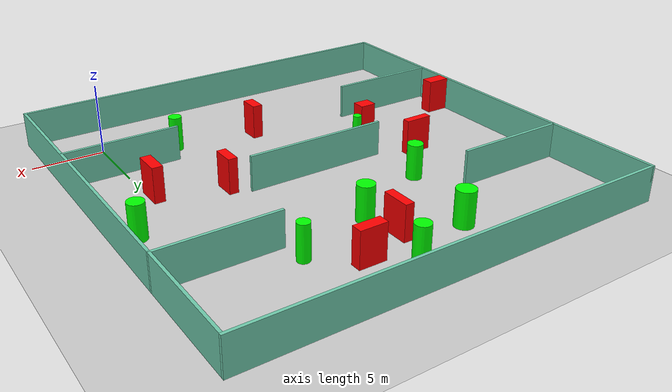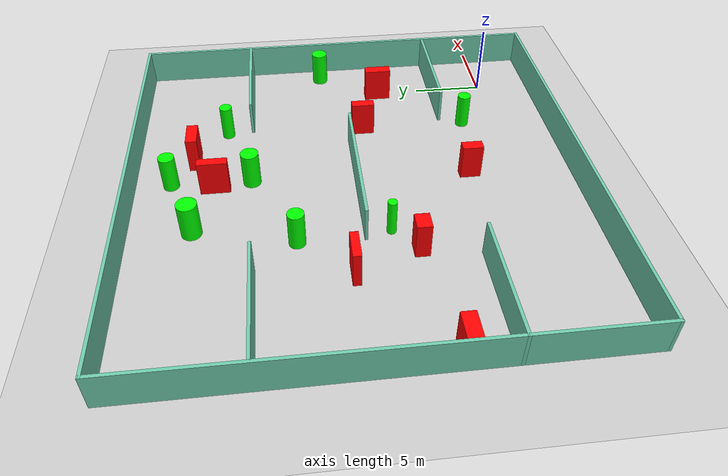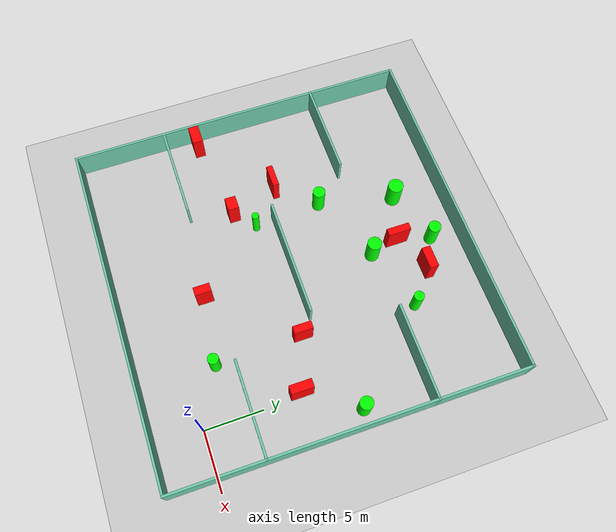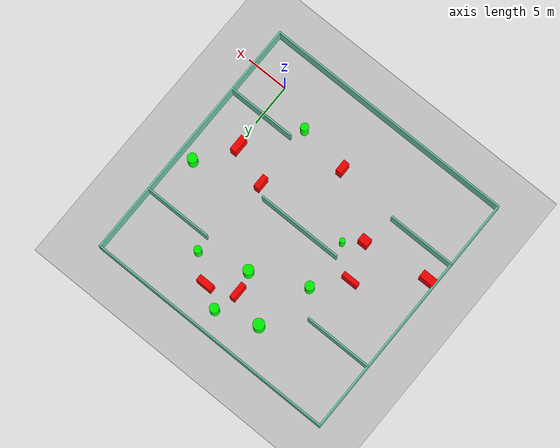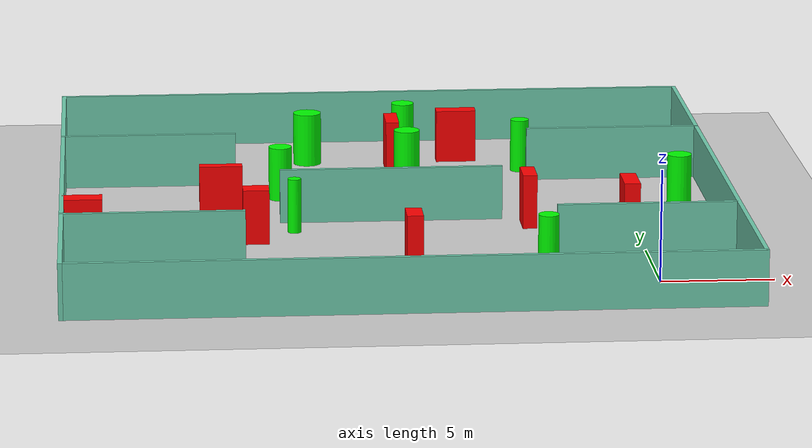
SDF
<sdf version="1.7">
 <world name="default">
  <light name="sun" type="directional">
   <pose>0 0 10 0 -0 0</pose>
   <diffuse>0.8 0.8 0.8 1</diffuse>
   <specular>0.2 0.2 0.2 1</specular>
   <attenuation>
    <range>1000</range>
    <constant>0.9</constant>
    <linear>0.01</linear>
    <quadratic>0.001</quadratic>
   </attenuation>
   <direction>-0.5 0.1 -0.9</direction>
   <spot><inner_angle>0</inner_angle><outer_angle>0</outer_angle><falloff>0</falloff></spot>
  </light>
  <model name="ground_plane">
   <static>1</static>
   <link name="link">
    <collision name="collision">
     <geometry><plane><normal>0 0 1</normal><size>100 100</size></plane></geometry>
     <surface>
      <contact><collide_bitmask>65535</collide_bitmask></contact>
      <friction><ode><mu>100</mu><mu2>50</mu2></ode></friction>
     </surface>
    </collision>
    <visual name="visual">
     <cast_shadows>0</cast_shadows>
     <geometry><plane><normal>0 0 1</normal><size>100 100</size></plane></geometry>
     <material>
      <script><uri>file://media/materials/scripts/gazebo.material</uri><name>Gazebo/Grey</name></script>
     </material>
    </visual>
   </link>
  </model>
  <gravity>0 0 -9.8</gravity>
  <magnetic_field>6e-06 2.3e-05 -4.2e-05</magnetic_field>
  <atmosphere type="adiabatic"/>
  <physics type="ode">
   <max_step_size>0.001</max_step_size>
   <real_time_factor>1</real_time_factor>
   <real_time_update_rate>1000</real_time_update_rate>
  </physics>
  <scene><ambient>0.4 0.4 0.4 1</ambient><background>0.7 0.7 0.7 1</background><shadows>1</shadows></scene>
  <spherical_coordinates>
   <surface_model>EARTH_WGS84</surface_model>
   <latitude_deg>0</latitude_deg>
   <longitude_deg>0</longitude_deg>
   <elevation>0</elevation>
   <heading_deg>0</heading_deg>
  </spherical_coordinates>
  <model name="my_base_walls">
   <link name="Wall_10">
    <collision name="Wall_10_Collision">
     <geometry><box><size>8.2 0.2 2.5</size></box></geometry>
     <pose>0 0 1.25 0 -0 0</pose>
    </collision>
    <visual name="Wall_10_Visual">
     <pose>0 0 1.25 0 -0 0</pose>
     <geometry><box><size>8.2 0.2 2.5</size></box></geometry>
     <material>
      <script><uri>file://media/materials/scripts/gazebo.material</uri><name>Gazebo/Grey</name></script>
      <ambient>0.435294 0.796078 0.67451 1</ambient>
     </material>
     <meta><layer>0</layer></meta>
    </visual>
    <pose>-11 -7 0 0 -0 0</pose>
   </link>
   <link name="Wall_12">
    <collision name="Wall_12_Collision">
     <geometry><box><size>8.2 0.2 2.5</size></box></geometry>
     <pose>0 0 1.25 0 -0 0</pose>
    </collision>
    <visual name="Wall_12_Visual">
     <pose>0 0 1.25 0 -0 0</pose>
     <geometry><box><size>8.2 0.2 2.5</size></box></geometry>
     <material>
      <script><uri>file://media/materials/scripts/gazebo.material</uri><name>Gazebo/Grey</name></script>
      <ambient>0.435294 0.796078 0.67451 1</ambient>
     </material>
     <meta><layer>0</layer></meta>
    </visual>
    <pose>-11 7 0 0 -0 0</pose>
   </link>
   <link name="Wall_14">
    <collision name="Wall_14_Collision">
     <geometry><box><size>8.2 0.2 2.5</size></box></geometry>
     <pose>0 0 1.25 0 -0 0</pose>
    </collision>
    <visual name="Wall_14_Visual">
     <pose>0 0 1.25 0 -0 0</pose>
     <geometry><box><size>8.2 0.2 2.5</size></box></geometry>
     <material>
      <script><uri>file://media/materials/scripts/gazebo.material</uri><name>Gazebo/Grey</name></script>
      <ambient>0.435294 0.796078 0.67451 1</ambient>
     </material>
     <meta><layer>0</layer></meta>
    </visual>
    <pose>11 7 0 0 -0 3.14159</pose>
   </link>
   <link name="Wall_16">
    <collision name="Wall_16_Collision">
     <geometry><box><size>10.2 0.2 2.5</size></box></geometry>
     <pose>0 0 1.25 0 -0 0</pose>
    </collision>
    <visual name="Wall_16_Visual">
     <pose>0 0 1.25 0 -0 0</pose>
     <geometry><box><size>10.2 0.2 2.5</size></box></geometry>
     <material>
      <script><uri>file://media/materials/scripts/gazebo.material</uri><name>Gazebo/Grey</name></script>
      <ambient>0.435294 0.796078 0.67451 1</ambient>
     </material>
     <meta><layer>0</layer></meta>
    </visual>
    <pose>0 0 0 0 -0 3.14159</pose>
   </link>
   <link name="Wall_2">
    <collision name="Wall_2_Collision">
     <geometry><box><size>30.2 0.2 2.5</size></box></geometry>
     <pose>0 0 1.25 0 -0 0</pose>
    </collision>
    <visual name="Wall_2_Visual">
     <pose>0 0 1.25 0 -0 0</pose>
     <geometry><box><size>30.2 0.2 2.5</size></box></geometry>
     <material>
      <script><uri>file://media/materials/scripts/gazebo.material</uri><name>Gazebo/Grey</name></script>
      <ambient>0.435294 0.796078 0.67451 1</ambient>
     </material>
     <meta><layer>0</layer></meta>
    </visual>
    <pose>0 -15 0 0 -0 3.14159</pose>
   </link>
   <link name="Wall_3">
    <collision name="Wall_3_Collision">
     <geometry><box><size>30.2 0.2 2.5</size></box></geometry>
     <pose>0 0 1.25 0 -0 0</pose>
    </collision>
    <visual name="Wall_3_Visual">
     <pose>0 0 1.25 0 -0 0</pose>
     <geometry><box><size>30.2 0.2 2.5</size></box></geometry>
     <material>
      <script><uri>file://media/materials/scripts/gazebo.material</uri><name>Gazebo/Grey</name></script>
      <ambient>0.435294 0.796078 0.67451 1</ambient>
     </material>
     <meta><layer>0</layer></meta>
    </visual>
    <pose>-15 0 0 0 -0 1.5708</pose>
   </link>
   <link name="Wall_4">
    <collision name="Wall_4_Collision">
     <geometry><box><size>30.2 0.2 2.5</size></box></geometry>
     <pose>0 0 1.25 0 -0 0</pose>
    </collision>
    <visual name="Wall_4_Visual">
     <pose>0 0 1.25 0 -0 0</pose>
     <geometry><box><size>30.2 0.2 2.5</size></box></geometry>
     <material>
      <script><uri>file://media/materials/scripts/gazebo.material</uri><name>Gazebo/Grey</name></script>
      <ambient>0.435294 0.796078 0.67451 1</ambient>
     </material>
     <meta><layer>0</layer></meta>
    </visual>
    <pose>0 15 0 0 -0 0</pose>
   </link>
   <link name="Wall_6">
    <collision name="Wall_6_Collision">
     <geometry><box><size>30.2 0.2 2.5</size></box></geometry>
     <pose>0 0 1.25 0 -0 0</pose>
    </collision>
    <visual name="Wall_6_Visual">
     <pose>0 0 1.25 0 -0 0</pose>
     <geometry><box><size>30.2 0.2 2.5</size></box></geometry>
     <material>
      <script><uri>file://media/materials/scripts/gazebo.material</uri><name>Gazebo/Grey</name></script>
      <ambient>0.435294 0.796078 0.67451 1</ambient>
     </material>
     <meta><layer>0</layer></meta>
    </visual>
    <pose>15 0 0 0 -0 1.5708</pose>
   </link>
   <link name="Wall_8">
    <collision name="Wall_8_Collision">
     <geometry><box><size>8.2 0.2 2.5</size></box></geometry>
     <pose>0 0 1.25 0 -0 0</pose>
    </collision>
    <visual name="Wall_8_Visual">
     <pose>0 0 1.25 0 -0 0</pose>
     <geometry><box><size>8.2 0.2 2.5</size></box></geometry>
     <material>
      <script><uri>file://media/materials/scripts/gazebo.material</uri><name>Gazebo/Grey</name></script>
      <ambient>0.435294 0.796078 0.67451 1</ambient>
     </material>
     <meta><layer>0</layer></meta>
    </visual>
    <pose>11 -7 0 0 -0 3.14159</pose>
   </link>
   <static>1</static>
   <pose>-11 11 0 0 -0 0</pose>
  </model>
  <model name="cylinder1">
   <static>1</static>
   <link name="link">
    <inertial>
     <mass>1</mass>
     <inertia><ixx>0.5</ixx><ixy>0</ixy><ixz>0</ixz><iyy>0.5</iyy><iyz>0</iyz><izz>1</izz></inertia>
    </inertial>
    <collision name="collision">
     <geometry><cylinder><radius>0.5362620007912603</radius><length>2.5</length></cylinder></geometry>
    </collision>
    <visual name="visual">
     <geometry><cylinder><radius>0.5362620007912603</radius><length>2.5</length></cylinder></geometry>
     <material>
      <ambient>0 1 0 1</ambient>
      <diffuse>0 1 0 1</diffuse>
      <specular>0.1 0.1 0.1 1</specular>
      <emissive>0 0 0 0</emissive>
     </material>
    </visual>
   </link>
   <pose>-9.60209510580282 23.487721410748595 1.25 0 0 0</pose>
  </model>
  <model name="cylinder2">
   <static>1</static>
   <link name="link">
    <inertial>
     <mass>1</mass>
     <inertia><ixx>0.5</ixx><ixy>0</ixy><ixz>0</ixz><iyy>0.5</iyy><iyz>0</iyz><izz>1</izz></inertia>
    </inertial>
    <collision name="collision">
     <geometry><cylinder><radius>0.6042024968127713</radius><length>2.5</length></cylinder></geometry>
    </collision>
    <visual name="visual">
     <geometry><cylinder><radius>0.6042024968127713</radius><length>2.5</length></cylinder></geometry>
     <material>
      <ambient>0 1 0 1</ambient>
      <diffuse>0 1 0 1</diffuse>
      <specular>0.1 0.1 0.1 1</specular>
      <emissive>0 0 0 0</emissive>
     </material>
    </visual>
   </link>
   <pose>-9.77927187030378 18.057673641165533 1.25 0 0 0</pose>
  </model>
  <model name="cylinder3">
   <static>1</static>
   <link name="link">
    <inertial>
     <mass>1</mass>
     <inertia><ixx>0.5</ixx><ixy>0</ixy><ixz>0</ixz><iyy>0.5</iyy><iyz>0</iyz><izz>1</izz></inertia>
    </inertial>
    <collision name="collision">
     <geometry><cylinder><radius>0.433818177557921</radius><length>2.5</length></cylinder></geometry>
    </collision>
    <visual name="visual">
     <geometry><cylinder><radius>0.433818177557921</radius><length>2.5</length></cylinder></geometry>
     <material>
      <ambient>0 1 0 1</ambient>
      <diffuse>0 1 0 1</diffuse>
      <specular>0.1 0.1 0.1 1</specular>
      <emissive>0 0 0 0</emissive>
     </material>
    </visual>
   </link>
   <pose>-4.248152499141366 19.77786326263529 1.25 0 0 0</pose>
  </model>
  <model name="cylinder4">
   <static>1</static>
   <link name="link">
    <inertial>
     <mass>1</mass>
     <inertia><ixx>0.5</ixx><ixy>0</ixy><ixz>0</ixz><iyy>0.5</iyy><iyz>0</iyz><izz>1</izz></inertia>
    </inertial>
    <collision name="collision">
     <geometry><cylinder><radius>0.30596868419865625</radius><length>2.5</length></cylinder></geometry>
    </collision>
    <visual name="visual">
     <geometry><cylinder><radius>0.30596868419865625</radius><length>2.5</length></cylinder></geometry>
     <material>
      <ambient>0 1 0 1</ambient>
      <diffuse>0 1 0 1</diffuse>
      <specular>0.1 0.1 0.1 1</specular>
      <emissive>0 0 0 0</emissive>
     </material>
    </visual>
   </link>
   <pose>-15.508229321980785 9.338243217760938 1.25 0 0 0</pose>
  </model>
  <model name="cylinder5">
   <static>1</static>
   <link name="link">
    <inertial>
     <mass>1</mass>
     <inertia><ixx>0.5</ixx><ixy>0</ixy><ixz>0</ixz><iyy>0.5</iyy><iyz>0</iyz><izz>1</izz></inertia>
    </inertial>
    <collision name="collision">
     <geometry><cylinder><radius>0.6606025399592867</radius><length>2.5</length></cylinder></geometry>
    </collision>
    <visual name="visual">
     <geometry><cylinder><radius>0.6606025399592867</radius><length>2.5</length></cylinder></geometry>
     <material>
      <ambient>0 1 0 1</ambient>
      <diffuse>0 1 0 1</diffuse>
      <specular>0.1 0.1 0.1 1</specular>
      <emissive>0 0 0 0</emissive>
     </material>
    </visual>
   </link>
   <pose>-14.323137322463722 21.831858688143587 1.25 0 0 0</pose>
  </model>
  <model name="cylinder6">
   <static>1</static>
   <link name="link">
    <inertial>
     <mass>1</mass>
     <inertia><ixx>0.5</ixx><ixy>0</ixy><ixz>0</ixz><iyy>0.5</iyy><iyz>0</iyz><izz>1</izz></inertia>
    </inertial>
    <collision name="collision">
     <geometry><cylinder><radius>0.5653871657430642</radius><length>2.5</length></cylinder></geometry>
    </collision>
    <visual name="visual">
     <geometry><cylinder><radius>0.5653871657430642</radius><length>2.5</length></cylinder></geometry>
     <material>
      <ambient>0 1 0 1</ambient>
      <diffuse>0 1 0 1</diffuse>
      <specular>0.1 0.1 0.1 1</specular>
      <emissive>0 0 0 0</emissive>
     </material>
    </visual>
   </link>
   <pose>2.4888174237712093 12.554332386689799 1.25 0 0 0</pose>
  </model>
  <model name="cylinder7">
   <static>1</static>
   <link name="link">
    <inertial>
     <mass>1</mass>
     <inertia><ixx>0.5</ixx><ixy>0</ixy><ixz>0</ixz><iyy>0.5</iyy><iyz>0</iyz><izz>1</izz></inertia>
    </inertial>
    <collision name="collision">
     <geometry><cylinder><radius>0.4611971692171186</radius><length>2.5</length></cylinder></geometry>
    </collision>
    <visual name="visual">
     <geometry><cylinder><radius>0.4611971692171186</radius><length>2.5</length></cylinder></geometry>
     <material>
      <ambient>0 1 0 1</ambient>
      <diffuse>0 1 0 1</diffuse>
      <specular>0.1 0.1 0.1 1</specular>
      <emissive>0 0 0 0</emissive>
     </material>
    </visual>
   </link>
   <pose>-4.65333495216621 2.3737788551580703 1.25 0 0 0</pose>
  </model>
  <model name="cylinder8">
   <static>1</static>
   <link name="link">
    <inertial>
     <mass>1</mass>
     <inertia><ixx>0.5</ixx><ixy>0</ixy><ixz>0</ixz><iyy>0.5</iyy><iyz>0</iyz><izz>1</izz></inertia>
    </inertial>
    <collision name="collision">
     <geometry><cylinder><radius>0.5369871977086539</radius><length>2.5</length></cylinder></geometry>
    </collision>
    <visual name="visual">
     <geometry><cylinder><radius>0.5369871977086539</radius><length>2.5</length></cylinder></geometry>
     <material>
      <ambient>0 1 0 1</ambient>
      <diffuse>0 1 0 1</diffuse>
      <specular>0.1 0.1 0.1 1</specular>
      <emissive>0 0 0 0</emissive>
     </material>
    </visual>
   </link>
   <pose>-15.897414058238336 15.277636979690978 1.25 0 0 0</pose>
  </model>
  <model name="box1">
   <static>1</static>
   <link name="link">
    <inertial>
     <mass>1</mass>
     <inertia><ixx>0.083</ixx><ixy>0</ixy><ixz>0</ixz><iyy>0.083</iyy><iyz>0</iyz><izz>0.083</izz></inertia>
    </inertial>
    <collision name="collision">
     <geometry><box><size>1.1777118152475108 0.9555386410075731 2.5</size></box></geometry>
    </collision>
    <visual name="visual">
     <geometry><box><size>1.1777118152475108 0.9555386410075731 2.5</size></box></geometry>
     <material>
      <ambient>1 0 0 1</ambient>
      <diffuse>1 0 0 1</diffuse>
      <specular>0.1 0.1 0.1 1</specular>
      <emissive>0 0 0 0</emissive>
     </material>
    </visual>
    <sensor name="my_contact" type="contact">
     <contact><collision>box_collision</collision><topic>__default_topic__</topic></contact>
    </sensor>
   </link>
   <pose>-17.30944522072137 7.773088846810822 1.25 0 0 0</pose>
  </model>
  <model name="box2">
   <static>1</static>
   <link name="link">
    <inertial>
     <mass>1</mass>
     <inertia><ixx>0.083</ixx><ixy>0</ixy><ixz>0</ixz><iyy>0.083</iyy><iyz>0</iyz><izz>0.083</izz></inertia>
    </inertial>
    <collision name="collision">
     <geometry><box><size>0.6236480552163869 1.9788091386885356 2.5</size></box></geometry>
    </collision>
    <visual name="visual">
     <geometry><box><size>0.6236480552163869 1.9788091386885356 2.5</size></box></geometry>
     <material>
      <ambient>1 0 0 1</ambient>
      <diffuse>1 0 0 1</diffuse>
      <specular>0.1 0.1 0.1 1</specular>
      <emissive>0 0 0 0</emissive>
     </material>
    </visual>
    <sensor name="my_contact" type="contact">
     <contact><collision>box_collision</collision><topic>__default_topic__</topic></contact>
    </sensor>
   </link>
   <pose>-10.351324555200396 20.49095614142331 1.25 0 0 0</pose>
  </model>
  <model name="box3">
   <static>1</static>
   <link name="link">
    <inertial>
     <mass>1</mass>
     <inertia><ixx>0.083</ixx><ixy>0</ixy><ixz>0</ixz><iyy>0.083</iyy><iyz>0</iyz><izz>0.083</izz></inertia>
    </inertial>
    <collision name="collision">
     <geometry><box><size>0.7316439184791095 1.4048451818431895 2.5</size></box></geometry>
    </collision>
    <visual name="visual">
     <geometry><box><size>0.7316439184791095 1.4048451818431895 2.5</size></box></geometry>
     <material>
      <ambient>1 0 0 1</ambient>
      <diffuse>1 0 0 1</diffuse>
      <specular>0.1 0.1 0.1 1</specular>
      <emissive>0 0 0 0</emissive>
     </material>
    </visual>
    <sensor name="my_contact" type="contact">
     <contact><collision>box_collision</collision><topic>__default_topic__</topic></contact>
    </sensor>
   </link>
   <pose>-10.514973651685185 3.168628061010926 1.25 0 0 0</pose>
  </model>
  <model name="box4">
   <static>1</static>
   <link name="link">
    <inertial>
     <mass>1</mass>
     <inertia><ixx>0.083</ixx><ixy>0</ixy><ixz>0</ixz><iyy>0.083</iyy><iyz>0</iyz><izz>0.083</izz></inertia>
    </inertial>
    <collision name="collision">
     <geometry><box><size>0.6522393017138745 1.5990848320777424 2.5</size></box></geometry>
    </collision>
    <visual name="visual">
     <geometry><box><size>0.6522393017138745 1.5990848320777424 2.5</size></box></geometry>
     <material>
      <ambient>1 0 0 1</ambient>
      <diffuse>1 0 0 1</diffuse>
      <specular>0.1 0.1 0.1 1</specular>
      <emissive>0 0 0 0</emissive>
     </material>
    </visual>
    <sensor name="my_contact" type="contact">
     <contact><collision>box_collision</collision><topic>__default_topic__</topic></contact>
    </sensor>
   </link>
   <pose>-4.7958954164275625 9.909419405260035 1.25 0 0 0</pose>
  </model>
  <model name="box5">
   <static>1</static>
   <link name="link">
    <inertial>
     <mass>1</mass>
     <inertia><ixx>0.083</ixx><ixy>0</ixy><ixz>0</ixz><iyy>0.083</iyy><iyz>0</iyz><izz>0.083</izz></inertia>
    </inertial>
    <collision name="collision">
     <geometry><box><size>1.8930389758624462 0.7571437341057068 2.5</size></box></geometry>
    </collision>
    <visual name="visual">
     <geometry><box><size>1.8930389758624462 0.7571437341057068 2.5</size></box></geometry>
     <material>
      <ambient>1 0 0 1</ambient>
      <diffuse>1 0 0 1</diffuse>
      <specular>0.1 0.1 0.1 1</specular>
      <emissive>0 0 0 0</emissive>
     </material>
    </visual>
    <sensor name="my_contact" type="contact">
     <contact><collision>box_collision</collision><topic>__default_topic__</topic></contact>
    </sensor>
   </link>
   <pose>-7.143518629113904 21.987413566209202 1.25 0 0 0</pose>
  </model>
  <model name="box6">
   <static>1</static>
   <link name="link">
    <inertial>
     <mass>1</mass>
     <inertia><ixx>0.083</ixx><ixy>0</ixy><ixz>0</ixz><iyy>0.083</iyy><iyz>0</iyz><izz>0.083</izz></inertia>
    </inertial>
    <collision name="collision">
     <geometry><box><size>1.9692393254864988 0.535292194704413 2.5</size></box></geometry>
    </collision>
    <visual name="visual">
     <geometry><box><size>1.9692393254864988 0.535292194704413 2.5</size></box></geometry>
     <material>
      <ambient>1 0 0 1</ambient>
      <diffuse>1 0 0 1</diffuse>
      <specular>0.1 0.1 0.1 1</specular>
      <emissive>0 0 0 0</emissive>
     </material>
    </visual>
    <sensor name="my_contact" type="contact">
     <contact><collision>box_collision</collision><topic>__default_topic__</topic></contact>
    </sensor>
   </link>
   <pose>-18.7637030941345 11.971055524174739 1.25 0 0 0</pose>
  </model>
  <model name="box7">
   <static>1</static>
   <link name="link">
    <inertial>
     <mass>1</mass>
     <inertia><ixx>0.083</ixx><ixy>0</ixy><ixz>0</ixz><iyy>0.083</iyy><iyz>0</iyz><izz>0.083</izz></inertia>
    </inertial>
    <collision name="collision">
     <geometry><box><size>1.7684814803702862 0.896561963864484 2.5</size></box></geometry>
    </collision>
    <visual name="visual">
     <geometry><box><size>1.7684814803702862 0.896561963864484 2.5</size></box></geometry>
     <material>
      <ambient>1 0 0 1</ambient>
      <diffuse>1 0 0 1</diffuse>
      <specular>0.1 0.1 0.1 1</specular>
      <emissive>0 0 0 0</emissive>
     </material>
    </visual>
    <sensor name="my_contact" type="contact">
     <contact><collision>box_collision</collision><topic>__default_topic__</topic></contact>
    </sensor>
   </link>
   <pose>-25.08075216557455 6.707504163522984 1.25 0 0 0</pose>
  </model>
  <model name="box8">
   <static>1</static>
   <link name="link">
    <inertial>
     <mass>1</mass>
     <inertia><ixx>0.083</ixx><ixy>0</ixy><ixz>0</ixz><iyy>0.083</iyy><iyz>0</iyz><izz>0.083</izz></inertia>
    </inertial>
    <collision name="collision">
     <geometry><box><size>0.7357884158448661 1.8973815144976363 2.5</size></box></geometry>
    </collision>
    <visual name="visual">
     <geometry><box><size>0.7357884158448661 1.8973815144976363 2.5</size></box></geometry>
     <material>
      <ambient>1 0 0 1</ambient>
      <diffuse>1 0 0 1</diffuse>
      <specular>0.1 0.1 0.1 1</specular>
      <emissive>0 0 0 0</emissive>
     </material>
    </visual>
    <sensor name="my_contact" type="contact">
     <contact><collision>box_collision</collision><topic>__default_topic__</topic></contact>
    </sensor>
   </link>
   <pose>-0.33684852023506906 8.249819889908467 1.25 0 0 0</pose>
  </model>
 </world>
</sdf>
